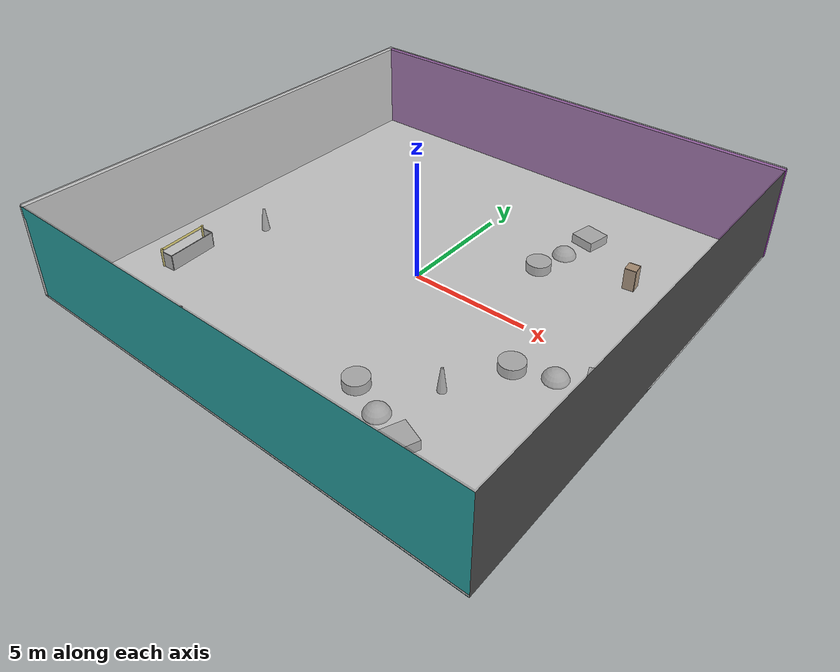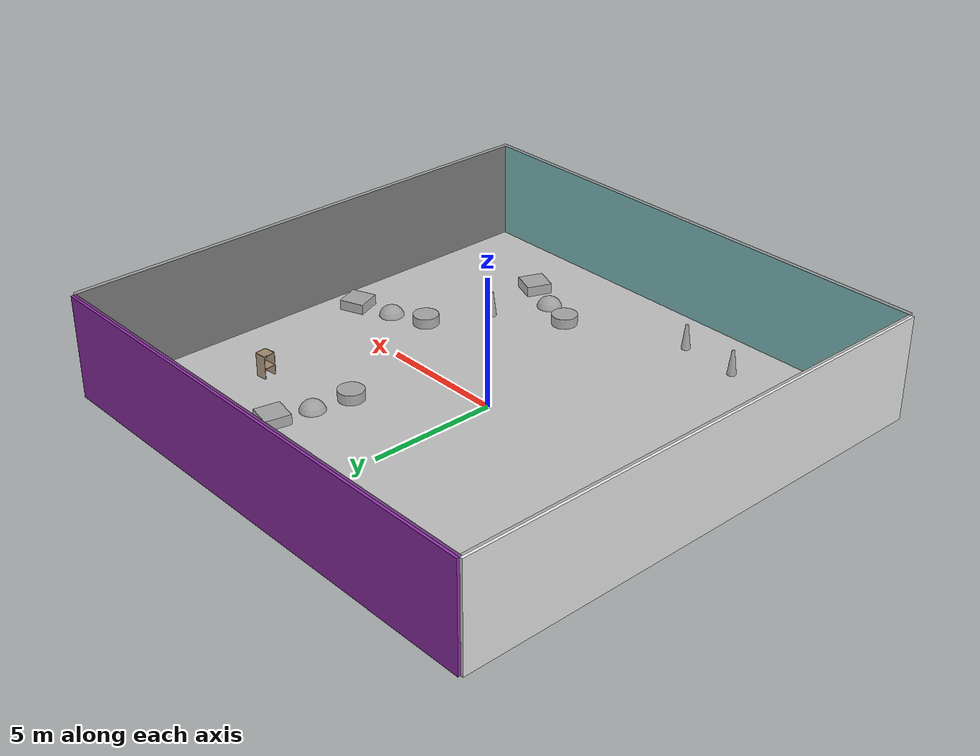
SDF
<sdf version="1.4">
 <world name="default">
  <physics type="ode">
   <max_step_size>0.001</max_step_size>
   <real_time_factor>1</real_time_factor>
   <real_time_update_rate>1000</real_time_update_rate>
   <gravity>0 0 -9.8</gravity>
  </physics>
  <scene><ambient>0.4 0.4 0.4 1</ambient><background>0.7 0.7 0.7 1</background><shadows>1</shadows></scene>
  <model name="Surrounding">
   <static>1</static>
   <link name="Ceiling">
    <collision name="Ceiling_Collision"><geometry><box><size>20 20 0.1</size></box></geometry></collision>
    <visual name="Ceiling_Visual">
     <geometry><box><size>20 20 0.1</size></box></geometry>
     <material>
      <script><uri>file://media/materials/scripts/gazebo.material</uri><name>Gazebo/GreyTransparent</name></script>
     </material>
    </visual>
    <pose>0 0 4.05 0 0 0</pose>
   </link>
   <link name="Wall_South">
    <collision name="Wall_South_Collision">
     <geometry><box><size>20 0 4</size></box></geometry>
     <pose>0 0 2 0 -0 0</pose>
    </collision>
    <visual name="Wall_South_Visual">
     <pose>0 0 2 0 -0 0</pose>
     <geometry><box><size>20 0 4</size></box></geometry>
     <material>
      <script><uri>file://media/materials/scripts/gazebo.material</uri><name>Gazebo/TurquoiseGlow</name></script>
     </material>
    </visual>
    <velocity_decay><linear>0</linear><angular>0</angular></velocity_decay>
    <pose>0 -10 0 0 -0 0</pose>
   </link>
   <link name="Wall_East">
    <collision name="Wall_21_Collision">
     <geometry><box><size>20 0 4</size></box></geometry>
     <pose>0 0 2 0 -0 0</pose>
    </collision>
    <visual name="Wall_21_Visual">
     <pose>0 0 2 0 -0 0</pose>
     <geometry><box><size>20 0 4</size></box></geometry>
     <material>
      <script><uri>file://media/materials/scripts/gazebo.material</uri><name>Gazebo/Road</name></script>
     </material>
    </visual>
    <velocity_decay><linear>0</linear><angular>0</angular></velocity_decay>
    <pose>10 0 0 0 -0 1.5708</pose>
   </link>
   <link name="Wall_North">
    <collision name="Wall_22_Collision">
     <geometry><box><size>20 0.2 4</size></box></geometry>
     <pose>0 0 2 0 -0 0</pose>
    </collision>
    <visual name="Wall_22_Visual">
     <pose>0 0 2 0 -0 0</pose>
     <geometry><box><size>20 0.2 4</size></box></geometry>
     <material>
      <script><uri>file://media/materials/scripts/gazebo.material</uri><name>Gazebo/Purple</name></script>
     </material>
    </visual>
    <velocity_decay><linear>0</linear><angular>0</angular></velocity_decay>
    <pose>0 10 0 0 -0 0</pose>
   </link>
   <link name="Wall_West">
    <collision name="Wall_23_Collision">
     <geometry><box><size>20 0.2 4</size></box></geometry>
     <pose>0 0 2 0 -0 0</pose>
    </collision>
    <visual name="Wall_23_Visual">
     <pose>0 0 2 0 -0 0</pose>
     <geometry><box><size>20 0.2 4</size></box></geometry>
     <material>
      <script><uri>file://media/materials/scripts/gazebo.material</uri><name>Gazebo/WhiteGlow</name></script>
     </material>
    </visual>
    <velocity_decay><linear>0</linear><angular>0</angular></velocity_decay>
    <pose>-10 0 0 0 0 -1.5708</pose>
   </link>
   <link name="Ground_link">
    <collision name="collision">
     <pose>0 0 .05 0 -0 0</pose>
     <geometry><box><size>20 20 0.1</size></box></geometry>
    </collision>
    <visual name="visual">
     <pose>0 0 .05 0 -0 0</pose>
     <geometry><box><size>20 20 0.1</size></box></geometry>
     <material>
      <script><uri>file://media/materials/scripts/gazebo.material</uri><name>Gazebo/White</name></script>
     </material>
    </visual>
   </link>
   <static>1</static>
  </model>
  <spherical_coordinates>
   <surface_model>EARTH_WGS84</surface_model>
   <latitude_deg>0</latitude_deg>
   <longitude_deg>0</longitude_deg>
   <elevation>0</elevation>
   <heading_deg>0</heading_deg>
  </spherical_coordinates>
  <light name="lightball_0" type="diffuse">
   <diffuse>0.8 0.8 0.8 1</diffuse>
   <specular>0.2 0.2 0.2 1</specular>
   <attenuation>
    <range>100</range>
    <constant>0.7</constant>
    <linear>0.01</linear>
    <quadratic>0.001</quadratic>
   </attenuation>
   <direction>-0.5 0.1 -0.9</direction>
   <pose>5.28602834312 -0.066738802516 3.86419146258 0 0 0</pose>
  </light>
  <include>
   <uri>model://robocup_3Dsim_goal</uri>
   <pose>-8.16692250874 -4.93723501893 0 0 0 0.0662173108032</pose>
  </include>
  <include>
   <uri>model://construction_cone</uri>
   <pose>-7.0360958999 -1.57570291611 0 0 0 3.11463022715</pose>
  </include>
  <include>
   <uri>model://construction_cone</uri>
   <pose>-4.31336484297 -7.9228946783 0 0 0 0.446007044772</pose>
  </include>
  <include>
   <uri>model://construction_cone</uri>
   <pose>-1.92466427931 -8.12698023822 0 0 0 2.8300622769</pose>
  </include>
  <include>
   <uri>model://textured_shapes</uri>
   <pose>3.87221233839 -6.70601513295 0 0 0 1.19597075963</pose>
  </include>
  <include>
   <uri>model://construction_cone</uri>
   <pose>4.81442076426 -4.55914526136 0 0 0 2.58773914181</pose>
  </include>
  <include>
   <uri>model://textured_shapes</uri>
   <pose>3.78174807176 4.76392270123 0 0 0 2.94375782335</pose>
  </include>
  <include>
   <uri>model://textured_shapes</uri>
   <pose>7.40367798731 -1.70682739049 0 0 0 1.93974405224</pose>
  </include>
  <include><uri>model://cabinet</uri><pose>6.83466486621 4.54068908607 0 0 0 0.112098957475</pose></include>
 </world>
</sdf>

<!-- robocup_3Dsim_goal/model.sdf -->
<sdf version="1.5">
  <model name="robocup_3d_goal">
    <static>true</static>
    <link name="left_post">
      <pose>0 1.05 0.45 0 0 0</pose>
      <collision name="collision">
        <geometry>
          <cylinder>
            <radius>0.05</radius>
            <length>0.9</length>
          </cylinder>
        </geometry>
      </collision>
      <visual name="visual">
        <geometry>
          <cylinder>
            <radius>0.05</radius>
            <length>0.9</length>
          </cylinder>
        </geometry>
        <material>
          <script>
            <uri>file://media/materials/scripts/gazebo.material</uri>
            <name>Gazebo/ZincYellow</name>
          </script>
        </material>
      </visual>
    </link>
    <link name="left_support_horiz_lower">
      <pose>0.30 1.05 0.01 0 0 0</pose>
      <collision name="collision">
        <geometry>
          <box>
            <size>0.50 0.02 0.02</size>
          </box>
        </geometry>
      </collision>
      <visual name="visual">
        <geometry>
          <box>
            <size>0.50 0.02 0.02</size>
          </box>
        </geometry>
        <material>
          <script>
            <uri>file://media/materials/scripts/gazebo.material</uri>
            <name>Gazebo/White</name>
          </script>
        </material>
      </visual>
    </link>
    <link name="left_support_horiz_upper">
      <pose>0.30 1.05 0.79 0 0 0</pose>
      <collision name="collision">
        <geometry>
          <box>
            <size>0.50 0.02 0.02</size>
          </box>
        </geometry>
      </collision>
      <visual name="visual">
        <geometry>
          <box>
            <size>0.50 0.02 0.02</size>
          </box>
        </geometry>
        <material>
          <script>
            <uri>file://media/materials/scripts/gazebo.material</uri>
            <name>Gazebo/White</name>
          </script>
        </material>
      </visual>
    </link>
    <link name="left_support_vertical">
      <pose>0.56 1.05 0.4 0 1.5708 0</pose>
      <collision name="collision">
        <geometry>
          <box>
            <size>0.80 0.02 0.02</size>
          </box>
        </geometry>
      </collision>
      <visual name="visual">
        <geometry>
          <box>
            <size>0.80 0.02 0.02</size>
          </box>
        </geometry>
        <material>
          <script>
            <uri>file://media/materials/scripts/gazebo.material</uri>
            <name>Gazebo/White</name>
          </script>
        </material>
      </visual>
    </link>
    <link name="right_support_horiz_lower">
      <pose>0.30 -1.05 0.01 0 0 0</pose>
      <collision name="collision">
        <geometry>
          <box>
            <size>0.50 0.02 0.02</size>
          </box>
        </geometry>
      </collision>
      <visual name="visual">
        <geometry>
          <box>
            <size>0.50 0.02 0.02</size>
          </box>
        </geometry>
        <material>
          <script>
            <uri>file://media/materials/scripts/gazebo.material</uri>
            <name>Gazebo/White</name>
          </script>
        </material>
      </visual>
    </link>
    <link name="right_support_horiz_upper">
      <pose>0.30 -1.05 0.79 0 0 0</pose>
      <collision name="collision">
        <geometry>
          <box>
            <size>0.50 0.02 0.02</size>
          </box>
        </geometry>
      </collision>
      <visual name="visual">
        <geometry>
          <box>
            <size>0.50 0.02 0.02</size>
          </box>
        </geometry>
        <material>
          <script>
            <uri>file://media/materials/scripts/gazebo.material</uri>
            <name>Gazebo/White</name>
          </script>
        </material>
      </visual>
    </link>
    <link name="right_support_vertical">
      <pose>0.56 -1.05 0.4 0 1.5708 0</pose>
      <collision name="collision">
        <geometry>
          <box>
            <size>0.80 0.02 0.02</size>
          </box>
        </geometry>
      </collision>
      <visual name="visual">
        <geometry>
          <box>
            <size>0.80 0.02 0.02</size>
          </box>
        </geometry>
        <material>
          <script>
            <uri>file://media/materials/scripts/gazebo.material</uri>
            <name>Gazebo/White</name>
          </script>
        </material>
      </visual>
    </link>
    <link name="center_support_horiz_lower">
      <pose>0.56 0 0.01 0 1.5708 0</pose>
      <collision name="collision">
        <geometry>
          <box>
            <size>0.02 2.08 0.02</size>
          </box>
        </geometry>
      </collision>
      <visual name="visual">
        <geometry>
          <box>
            <size>0.02 2.08 0.02</size>
          </box>
        </geometry>
        <material>
          <script>
            <uri>file://media/materials/scripts/gazebo.material</uri>
            <name>Gazebo/White</name>
          </script>
        </material>
      </visual>
    </link>
    <link name="center_support_horiz_upper">
      <pose>0.56 0 0.79 0 1.5708 0</pose>
      <collision name="collision">
        <geometry>
          <box>
            <size>0.02 2.08 0.02</size>
          </box>
        </geometry>
      </collision>
      <visual name="visual">
        <geometry>
          <box>
            <size>0.02 2.08 0.02</size>
          </box>
        </geometry>
        <material>
          <script>
            <uri>file://media/materials/scripts/gazebo.material</uri>
            <name>Gazebo/White</name>
          </script>
        </material>
      </visual>
    </link>
    <link name="right_post">
      <pose>0 -1.05 0.45 0 0 0</pose>
      <collision name="collision">
        <geometry>
          <cylinder>
            <radius>0.05</radius>
            <length>0.9</length>
          </cylinder>
        </geometry>
      </collision>
      <visual name="visual">
        <geometry>
          <cylinder>
            <radius>0.05</radius>
            <length>0.9</length>
          </cylinder>
        </geometry>
        <material>
          <script>
            <uri>file://media/materials/scripts/gazebo.material</uri>
            <name>Gazebo/ZincYellow</name>
          </script>
        </material>
      </visual>
    </link>
    <link name="crossbar">
      <pose>0 0 0.85 1.57 1.57 0</pose>
      <collision name="collision">
        <geometry>
          <cylinder>
            <radius>0.05</radius>
            <length>2.0</length>
          </cylinder>
        </geometry>
      </collision>
      <visual name="visual">
        <geometry>
          <cylinder>
            <radius>0.05</radius>
            <length>2.0</length>
          </cylinder>
        </geometry>
        <material>
          <script>
            <uri>file://media/materials/scripts/gazebo.material</uri>
            <name>Gazebo/ZincYellow</name>
          </script>
        </material>
      </visual>
    </link>
    <link name="center_net">
      <pose>0.56 0 0.40 0 0 0</pose>
      <collision name="collision">
        <geometry>
          <box>
            <size>0.01 2.1 0.80</size>
          </box>
        </geometry>
      </collision>
      <visual name="visual">
        <geometry>
          <box>
            <size>0.01 2.1 0.80</size>
          </box>
        </geometry>
        <material>
          <script>
            <uri>model://../model_source/models/robocup09_spl_field/materials/scripts/</uri>
            <uri>model://../model_source/models/robocup09_spl_field/materials/textures/</uri>
            <name>RoboCup/Net</name>
          </script>
        </material>
      </visual>
    </link>
    <link name="left_net">
      <pose>0.30 1.05 0.40 0 0 0</pose>
      <collision name="collision">
        <geometry>
          <box>
            <size>0.50 0.01 0.76</size>
          </box>
        </geometry>
      </collision>
      <visual name="visual">
        <geometry>
          <box>
            <size>0.50 0.01 0.76</size>
          </box>
        </geometry>
        <material>
          <script>
            <uri>model://../model_source/models/robocup09_spl_field/materials/scripts/</uri>
            <uri>model://../model_source/models/robocup09_spl_field/materials/textures/</uri>
            <name>RoboCup/Net</name>
          </script>
        </material>
      </visual>
    </link>
    <link name="right_net">
      <pose>0.30 -1.05 0.40 0 0 0</pose>
      <collision name="collision">
        <geometry>
          <box>
            <size>0.50 0.01 0.76</size>
          </box>
        </geometry>
      </collision>
      <visual name="visual">
        <geometry>
          <box>
            <size>0.50 0.01 0.76</size>
          </box>
        </geometry>
        <material>
          <script>
            <uri>model://../model_source/models/robocup09_spl_field/materials/scripts/</uri>
            <uri>model://../model_source/models/robocup09_spl_field/materials/textures/</uri>
            <name>RoboCup/Net</name>
          </script>
        </material>
      </visual>
    </link>
  </model>
</sdf>

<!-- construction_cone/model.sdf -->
<sdf version="1.5">
  <model name="Construction Cone">
    <link name="link">
      <collision name="collision">
        <geometry>
          <mesh>
            <scale>10 10 10</scale>
            <uri>file://isr-testbed/construction_cone/meshes/construction_cone.dae</uri>
          </mesh>
        </geometry>
      </collision>
      <visual name="visual">
        <geometry>
          <mesh>
            <scale>10 10 10</scale>
            <uri>file://isr-testbed/construction_cone/meshes/construction_cone.dae</uri>
          </mesh>
        </geometry>
      </visual>
    </link>
  </model>
</sdf>

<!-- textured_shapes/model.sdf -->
<sdf version="1.6">
  <model name="textured_shapes">
    <pose>0 0 0.5 0 0 0</pose>
    <link name="box">
      <pose>0 -1.5 0 0 0 0</pose>
      <collision name="collision">
        <geometry>
          <box>
            <size>1 1 1</size>
          </box>
        </geometry>
      </collision>
      <visual name="visual">
        <geometry>
          <box>
            <size>1 1 1</size>
          </box>
        </geometry>
        <material>
          <script>
            <uri>model://../model_source/models/textured_shapes/materials/scripts</uri>
            <uri>model://../model_source/models/textured_shapes/materials/textures</uri>
            <name>TexturedShape/Squares</name>
          </script>
        </material>
      </visual>
    </link>
    <link name="sphere">
      <collision name="collision">
        <geometry>
          <sphere>
            <radius>0.5</radius>
          </sphere>
        </geometry>
      </collision>
      <visual name="visual">
        <geometry>
          <sphere>
            <radius>0.5</radius>
          </sphere>
        </geometry>
        <material>
          <script>
            <uri>model://../model_source/models/textured_shapes/materials/scripts</uri>
            <uri>model://../model_source/models/textured_shapes/materials/textures</uri>
            <name>TexturedShape/Squares</name>
          </script>
        </material>
      </visual>
    </link>
    <link name="cylinder">
      <pose>0 1.5 0 0 0 0</pose>
      <collision name="collision">
        <geometry>
          <cylinder>
            <radius>0.5</radius>
            <length>1</length>
          </cylinder>
        </geometry>
      </collision>
      <visual name="visual">
        <geometry>
          <cylinder>
            <radius>0.5</radius>
            <length>1</length>
          </cylinder>
        </geometry>
        <material>
          <script>
            <uri>model://../model_source/models/textured_shapes/materials/scripts</uri>
            <uri>model://../model_source/models/textured_shapes/materials/textures</uri>
            <name>TexturedShape/Squares</name>
          </script>
        </material>
      </visual>
    </link>
  </model>
</sdf>

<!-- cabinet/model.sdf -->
<sdf version="1.5">
  <model name="cabinet">
    <static>true</static>
    <link name="cabinet_bottom_plate">
      <inertial>
        <pose>0 0 -1 0 0 0</pose>
        <inertia>
          <ixx>2.050000</ixx>
          <ixy>0</ixy>
          <ixz>0</ixz>
          <iyy>2.050000</iyy>
          <iyz>0</iyz>
          <izz>2.050000</izz>
        </inertia>
        <mass>25.000000</mass>
      </inertial>
      <collision name="cabinet_bottom_plate_geom">
        <pose>0 0 0.010000 0 0 0</pose>
        <geometry>
          <box>
            <size>0.450000 0.450000 0.020000</size>
          </box>
        </geometry>
      </collision>
      <visual name="cabinet_bottom_plate_geom_visual">
        <pose>0 0 0.010000 0 0 0</pose>
        <geometry>
          <box>
            <size>0.450000 0.450000 0.020000</size>
          </box>
        </geometry>
        <material>
          <script>
            <uri>model://media/materials/scripts/gazebo.material</uri>
            <name>Gazebo/Wood</name>
          </script>
        </material>
      </visual>
      <collision name="cabinet_bottom_plate_geom_cabinet_back_plate">
        <pose>0.235000 0 0.510000 0 0 0</pose>
        <geometry>
          <box>
            <size>0.020000 0.450000 1.020000</size>
          </box>
        </geometry>
      </collision>
      <visual name="cabinet_bottom_plate_geom_cabinet_back_plate_visual">
        <pose>0.235000 0 0.510000 0 0 0</pose>
        <geometry>
          <box>
            <size>0.020000 0.450000 1.020000</size>
          </box>
        </geometry>
        <material>
          <script>
            <uri>model://media/materials/scripts/gazebo.material</uri>
            <name>Gazebo/Wood</name>
          </script>
        </material>
      </visual>
      <collision name="cabinet_bottom_plate_geom_cabinet_left_plate">
        <pose>0 0.235000 0.510000 0 0 0</pose>
        <geometry>
          <box>
            <size>0.450000 0.020000 1.020000</size>
          </box>
        </geometry>
      </collision>
      <visual name="cabinet_bottom_plate_geom_cabinet_left_plate_visual">
        <pose>0 0.235000 0.510000 0 0 0</pose>
        <geometry>
          <box>
            <size>0.450000 0.020000 1.020000</size>
          </box>
        </geometry>
        <material>
          <script>
            <uri>model://media/materials/scripts/gazebo.material</uri>
            <name>Gazebo/Wood</name>
          </script>
        </material>
      </visual>
      <collision name="cabinet_bottom_plate_geom_cabinet_middle_plate">
        <pose>0 0 0.510000 0 0 0</pose>
        <geometry>
          <box>
            <size>0.450000 0.450000 0.020000</size>
          </box>
        </geometry>
      </collision>
      <visual name="cabinet_bottom_plate_geom_cabinet_middle_plate_visual">
        <pose>0 0 0.510000 0 0 0</pose>
        <geometry>
          <box>
            <size>0.450000 0.450000 0.020000</size>
          </box>
        </geometry>
        <material>
          <script>
            <uri>model://media/materials/scripts/gazebo.material</uri>
            <name>Gazebo/Wood</name>
          </script>
        </material>
      </visual>
      <collision name="cabinet_bottom_plate_geom_cabinet_right_plate">
        <pose>0 -0.235000 0.510000 0 0 0</pose>
        <geometry>
          <box>
            <size>0.450000 0.020000 1.020000</size>
          </box>
        </geometry>
      </collision>
      <visual name="cabinet_bottom_plate_geom_cabinet_right_plate_visual">
        <pose>0 -0.235000 0.510000 0 0 0</pose>
        <geometry>
          <box>
            <size>0.450000 0.020000 1.020000</size>
          </box>
        </geometry>
        <material>
          <script>
            <uri>model://media/materials/scripts/gazebo.material</uri>
            <name>Gazebo/Wood</name>
          </script>
        </material>
      </visual>
      <collision name="cabinet_bottom_plate_geom_cabinet_top_plate">
        <pose>0 0 1.010000 0 0 0</pose>
        <geometry>
          <box>
            <size>0.450000 0.450000 0.020000</size>
          </box>
        </geometry>
      </collision>
      <visual name="cabinet_bottom_plate_geom_cabinet_top_plate_visual">
        <pose>0 0 1.010000 0 0 0</pose>
        <geometry>
          <box>
            <size>0.450000 0.450000 0.020000</size>
          </box>
        </geometry>
        <material>
          <script>
            <uri>model://media/materials/scripts/gazebo.material</uri>
            <name>Gazebo/Wood</name>
          </script>
        </material>
      </visual>
    </link>
  </model>
</sdf>
